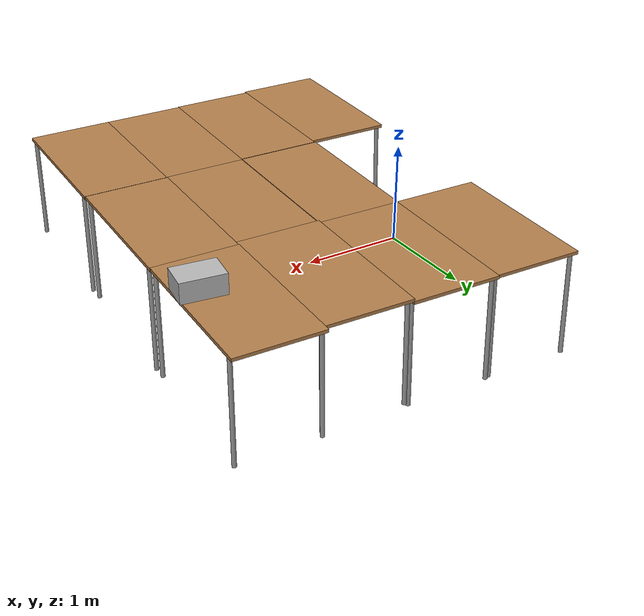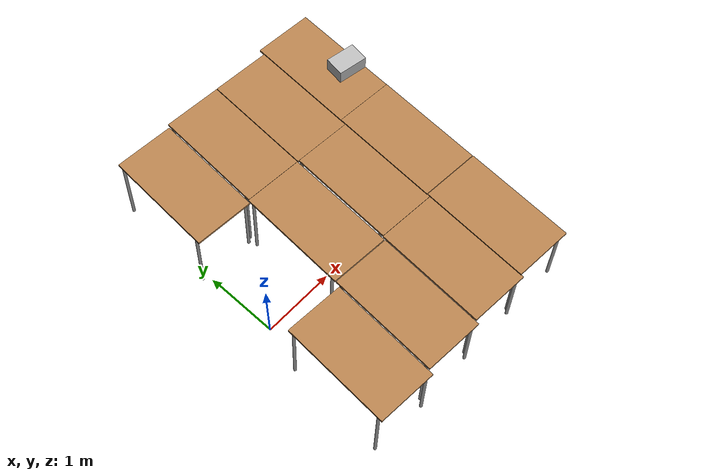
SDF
<sdf version="1.6">
 <world name="default">
  <light name="sun" type="directional">
   <pose>0 0 10 0 -0 0</pose>
   <diffuse>0.8 0.8 0.8 1</diffuse>
   <specular>0.2 0.2 0.2 1</specular>
   <attenuation>
    <range>1000</range>
    <constant>0.9</constant>
    <linear>0.01</linear>
    <quadratic>0.001</quadratic>
   </attenuation>
   <direction>-0.5 0.1 -0.9</direction>
  </light>
  <gravity>0 0 -9.8</gravity>
  <magnetic_field>6e-06 2.3e-05 -4.2e-05</magnetic_field>
  <atmosphere type="adiabatic"/>
  <physics name="default_physics" default="0" type="ode">
   <max_step_size>0.001</max_step_size>
   <real_time_factor>1</real_time_factor>
   <real_time_update_rate>1000</real_time_update_rate>
  </physics>
  <scene><ambient>0.4 0.4 0.4 1</ambient><background>0.7 0.7 0.7 1</background><shadows>1</shadows></scene>
  <spherical_coordinates>
   <surface_model>EARTH_WGS84</surface_model>
   <latitude_deg>0</latitude_deg>
   <longitude_deg>0</longitude_deg>
   <elevation>0</elevation>
   <heading_deg>0</heading_deg>
  </spherical_coordinates>
  <light name="user_directional_light_0" type="directional">
   <pose>-14.77 -34.6041 1 0 -0 0</pose>
   <diffuse>0.5 0.5 0.5 1</diffuse>
   <specular>0.1 0.1 0.1 1</specular>
   <direction>0.1 0.1 -0.9</direction>
   <attenuation>
    <range>20</range>
    <constant>0.5</constant>
    <linear>0.01</linear>
    <quadratic>0.001</quadratic>
   </attenuation>
  </light>
  <light name="user_directional_light_1" type="directional">
   <pose>-1.55221 -11.969 1 0 -0 0</pose>
   <diffuse>0.5 0.5 0.5 1</diffuse>
   <specular>0.1 0.1 0.1 1</specular>
   <direction>0.1 0.1 -0.9</direction>
   <attenuation>
    <range>20</range>
    <constant>0.5</constant>
    <linear>0.01</linear>
    <quadratic>0.001</quadratic>
   </attenuation>
  </light>
  <light name="user_directional_light_2" type="directional">
   <pose>-7.40704 12.5041 1 0 -0 0</pose>
   <diffuse>0.5 0.5 0.5 1</diffuse>
   <specular>0.1 0.1 0.1 1</specular>
   <direction>0.1 0.1 -0.9</direction>
   <attenuation>
    <range>20</range>
    <constant>0.5</constant>
    <linear>0.01</linear>
    <quadratic>0.001</quadratic>
   </attenuation>
  </light>
  <model name="table">
   <static>1</static>
   <link name="link">
    <collision name="surface">
     <pose>0 0 1 0 -0 0</pose>
     <geometry><box><size>1.5 0.8 0.03</size></box></geometry>
     <surface><friction><ode><mu>0.6</mu><mu2>0.6</mu2></ode></friction></surface>
    </collision>
    <visual name="visual1">
     <pose>0 0 1 0 -0 0</pose>
     <geometry><box><size>1.5 0.8 0.03</size></box></geometry>
     <material>
      <script><uri>file://media/materials/scripts/gazebo.material</uri><name>Gazebo/Wood</name></script>
     </material>
    </visual>
    <collision name="front_left_leg">
     <pose>0.68 0.38 0.5 0 -0 0</pose>
     <geometry><cylinder><radius>0.02</radius><length>1</length></cylinder></geometry>
    </collision>
    <visual name="front_left_leg">
     <pose>0.68 0.38 0.5 0 -0 0</pose>
     <geometry><cylinder><radius>0.02</radius><length>1</length></cylinder></geometry>
     <material>
      <script><uri>file://media/materials/scripts/gazebo.material</uri><name>Gazebo/Grey</name></script>
     </material>
    </visual>
    <collision name="front_right_leg">
     <pose>0.68 -0.38 0.5 0 -0 0</pose>
     <geometry><cylinder><radius>0.02</radius><length>1</length></cylinder></geometry>
    </collision>
    <visual name="front_right_leg">
     <pose>0.68 -0.38 0.5 0 -0 0</pose>
     <geometry><cylinder><radius>0.02</radius><length>1</length></cylinder></geometry>
     <material>
      <script><uri>file://media/materials/scripts/gazebo.material</uri><name>Gazebo/Grey</name></script>
     </material>
    </visual>
    <collision name="back_right_leg">
     <pose>-0.68 -0.38 0.5 0 -0 0</pose>
     <geometry><cylinder><radius>0.02</radius><length>1</length></cylinder></geometry>
    </collision>
    <visual name="back_right_leg">
     <pose>-0.68 -0.38 0.5 0 -0 0</pose>
     <geometry><cylinder><radius>0.02</radius><length>1</length></cylinder></geometry>
     <material>
      <script><uri>file://media/materials/scripts/gazebo.material</uri><name>Gazebo/Grey</name></script>
     </material>
    </visual>
    <collision name="back_left_leg">
     <pose>-0.68 0.38 0.5 0 -0 0</pose>
     <geometry><cylinder><radius>0.02</radius><length>1</length></cylinder></geometry>
    </collision>
    <visual name="back_left_leg">
     <pose>-0.68 0.38 0.5 0 -0 0</pose>
     <geometry><cylinder><radius>0.02</radius><length>1</length></cylinder></geometry>
     <material>
      <script><uri>file://media/materials/scripts/gazebo.material</uri><name>Gazebo/Grey</name></script>
     </material>
    </visual>
   </link>
   <pose>1.07153 0.248172 -0.001538 -0.021463 -0.00123 -1.62804</pose>
  </model>
  <model name="table_clone">
   <static>1</static>
   <link name="link">
    <collision name="surface">
     <pose>0 0 1 0 -0 0</pose>
     <geometry><box><size>1.5 0.8 0.03</size></box></geometry>
     <surface><friction><ode><mu>0.6</mu><mu2>0.6</mu2></ode></friction></surface>
    </collision>
    <visual name="visual1">
     <pose>0 0 1 0 -0 0</pose>
     <geometry><box><size>1.5 0.8 0.03</size></box></geometry>
     <material>
      <script><uri>file://media/materials/scripts/gazebo.material</uri><name>Gazebo/Wood</name></script>
     </material>
    </visual>
    <collision name="front_left_leg">
     <pose>0.68 0.38 0.5 0 -0 0</pose>
     <geometry><cylinder><radius>0.02</radius><length>1</length></cylinder></geometry>
    </collision>
    <visual name="front_left_leg">
     <pose>0.68 0.38 0.5 0 -0 0</pose>
     <geometry><cylinder><radius>0.02</radius><length>1</length></cylinder></geometry>
     <material>
      <script><uri>file://media/materials/scripts/gazebo.material</uri><name>Gazebo/Grey</name></script>
     </material>
    </visual>
    <collision name="front_right_leg">
     <pose>0.68 -0.38 0.5 0 -0 0</pose>
     <geometry><cylinder><radius>0.02</radius><length>1</length></cylinder></geometry>
    </collision>
    <visual name="front_right_leg">
     <pose>0.68 -0.38 0.5 0 -0 0</pose>
     <geometry><cylinder><radius>0.02</radius><length>1</length></cylinder></geometry>
     <material>
      <script><uri>file://media/materials/scripts/gazebo.material</uri><name>Gazebo/Grey</name></script>
     </material>
    </visual>
    <collision name="back_right_leg">
     <pose>-0.68 -0.38 0.5 0 -0 0</pose>
     <geometry><cylinder><radius>0.02</radius><length>1</length></cylinder></geometry>
    </collision>
    <visual name="back_right_leg">
     <pose>-0.68 -0.38 0.5 0 -0 0</pose>
     <geometry><cylinder><radius>0.02</radius><length>1</length></cylinder></geometry>
     <material>
      <script><uri>file://media/materials/scripts/gazebo.material</uri><name>Gazebo/Grey</name></script>
     </material>
    </visual>
    <collision name="back_left_leg">
     <pose>-0.68 0.38 0.5 0 -0 0</pose>
     <geometry><cylinder><radius>0.02</radius><length>1</length></cylinder></geometry>
    </collision>
    <visual name="back_left_leg">
     <pose>-0.68 0.38 0.5 0 -0 0</pose>
     <geometry><cylinder><radius>0.02</radius><length>1</length></cylinder></geometry>
     <material>
      <script><uri>file://media/materials/scripts/gazebo.material</uri><name>Gazebo/Grey</name></script>
     </material>
    </visual>
   </link>
   <pose>0.990012 -1.26149 -0.001538 -0.021463 -0.00123 -1.62804</pose>
  </model>
  <model name="table_clone_0">
   <static>1</static>
   <link name="link">
    <collision name="surface">
     <pose>0 0 1 0 -0 0</pose>
     <geometry><box><size>1.5 0.8 0.03</size></box></geometry>
     <surface><friction><ode><mu>0.6</mu><mu2>0.6</mu2></ode></friction></surface>
    </collision>
    <visual name="visual1">
     <pose>0 0 1 0 -0 0</pose>
     <geometry><box><size>1.5 0.8 0.03</size></box></geometry>
     <material>
      <script><uri>file://media/materials/scripts/gazebo.material</uri><name>Gazebo/Wood</name></script>
     </material>
    </visual>
    <collision name="front_left_leg">
     <pose>0.68 0.38 0.5 0 -0 0</pose>
     <geometry><cylinder><radius>0.02</radius><length>1</length></cylinder></geometry>
    </collision>
    <visual name="front_left_leg">
     <pose>0.68 0.38 0.5 0 -0 0</pose>
     <geometry><cylinder><radius>0.02</radius><length>1</length></cylinder></geometry>
     <material>
      <script><uri>file://media/materials/scripts/gazebo.material</uri><name>Gazebo/Grey</name></script>
     </material>
    </visual>
    <collision name="front_right_leg">
     <pose>0.68 -0.38 0.5 0 -0 0</pose>
     <geometry><cylinder><radius>0.02</radius><length>1</length></cylinder></geometry>
    </collision>
    <visual name="front_right_leg">
     <pose>0.68 -0.38 0.5 0 -0 0</pose>
     <geometry><cylinder><radius>0.02</radius><length>1</length></cylinder></geometry>
     <material>
      <script><uri>file://media/materials/scripts/gazebo.material</uri><name>Gazebo/Grey</name></script>
     </material>
    </visual>
    <collision name="back_right_leg">
     <pose>-0.68 -0.38 0.5 0 -0 0</pose>
     <geometry><cylinder><radius>0.02</radius><length>1</length></cylinder></geometry>
    </collision>
    <visual name="back_right_leg">
     <pose>-0.68 -0.38 0.5 0 -0 0</pose>
     <geometry><cylinder><radius>0.02</radius><length>1</length></cylinder></geometry>
     <material>
      <script><uri>file://media/materials/scripts/gazebo.material</uri><name>Gazebo/Grey</name></script>
     </material>
    </visual>
    <collision name="back_left_leg">
     <pose>-0.68 0.38 0.5 0 -0 0</pose>
     <geometry><cylinder><radius>0.02</radius><length>1</length></cylinder></geometry>
    </collision>
    <visual name="back_left_leg">
     <pose>-0.68 0.38 0.5 0 -0 0</pose>
     <geometry><cylinder><radius>0.02</radius><length>1</length></cylinder></geometry>
     <material>
      <script><uri>file://media/materials/scripts/gazebo.material</uri><name>Gazebo/Grey</name></script>
     </material>
    </visual>
   </link>
   <pose>1.16682 1.74623 -0.001538 -0.021463 -0.00123 -1.62804</pose>
  </model>
  <model name="table_clone_1">
   <static>1</static>
   <link name="link">
    <collision name="surface">
     <pose>0 0 1 0 -0 0</pose>
     <geometry><box><size>1.5 0.8 0.03</size></box></geometry>
     <surface><friction><ode><mu>0.6</mu><mu2>0.6</mu2></ode></friction></surface>
    </collision>
    <visual name="visual1">
     <pose>0 0 1 0 -0 0</pose>
     <geometry><box><size>1.5 0.8 0.03</size></box></geometry>
     <material>
      <script><uri>file://media/materials/scripts/gazebo.material</uri><name>Gazebo/Wood</name></script>
     </material>
    </visual>
    <collision name="front_left_leg">
     <pose>0.68 0.38 0.5 0 -0 0</pose>
     <geometry><cylinder><radius>0.02</radius><length>1</length></cylinder></geometry>
    </collision>
    <visual name="front_left_leg">
     <pose>0.68 0.38 0.5 0 -0 0</pose>
     <geometry><cylinder><radius>0.02</radius><length>1</length></cylinder></geometry>
     <material>
      <script><uri>file://media/materials/scripts/gazebo.material</uri><name>Gazebo/Grey</name></script>
     </material>
    </visual>
    <collision name="front_right_leg">
     <pose>0.68 -0.38 0.5 0 -0 0</pose>
     <geometry><cylinder><radius>0.02</radius><length>1</length></cylinder></geometry>
    </collision>
    <visual name="front_right_leg">
     <pose>0.68 -0.38 0.5 0 -0 0</pose>
     <geometry><cylinder><radius>0.02</radius><length>1</length></cylinder></geometry>
     <material>
      <script><uri>file://media/materials/scripts/gazebo.material</uri><name>Gazebo/Grey</name></script>
     </material>
    </visual>
    <collision name="back_right_leg">
     <pose>-0.68 -0.38 0.5 0 -0 0</pose>
     <geometry><cylinder><radius>0.02</radius><length>1</length></cylinder></geometry>
    </collision>
    <visual name="back_right_leg">
     <pose>-0.68 -0.38 0.5 0 -0 0</pose>
     <geometry><cylinder><radius>0.02</radius><length>1</length></cylinder></geometry>
     <material>
      <script><uri>file://media/materials/scripts/gazebo.material</uri><name>Gazebo/Grey</name></script>
     </material>
    </visual>
    <collision name="back_left_leg">
     <pose>-0.68 0.38 0.5 0 -0 0</pose>
     <geometry><cylinder><radius>0.02</radius><length>1</length></cylinder></geometry>
    </collision>
    <visual name="back_left_leg">
     <pose>-0.68 0.38 0.5 0 -0 0</pose>
     <geometry><cylinder><radius>0.02</radius><length>1</length></cylinder></geometry>
     <material>
      <script><uri>file://media/materials/scripts/gazebo.material</uri><name>Gazebo/Grey</name></script>
     </material>
    </visual>
   </link>
   <pose>0.349059 1.7575 -0.001538 -0.021463 -0.00123 -1.62804</pose>
  </model>
  <model name="table_clone_2">
   <static>1</static>
   <link name="link">
    <collision name="surface">
     <pose>0 0 1 0 -0 0</pose>
     <geometry><box><size>1.5 0.8 0.03</size></box></geometry>
     <surface><friction><ode><mu>0.6</mu><mu2>0.6</mu2></ode></friction></surface>
    </collision>
    <visual name="visual1">
     <pose>0 0 1 0 -0 0</pose>
     <geometry><box><size>1.5 0.8 0.03</size></box></geometry>
     <material>
      <script><uri>file://media/materials/scripts/gazebo.material</uri><name>Gazebo/Wood</name></script>
     </material>
    </visual>
    <collision name="front_left_leg">
     <pose>0.68 0.38 0.5 0 -0 0</pose>
     <geometry><cylinder><radius>0.02</radius><length>1</length></cylinder></geometry>
    </collision>
    <visual name="front_left_leg">
     <pose>0.68 0.38 0.5 0 -0 0</pose>
     <geometry><cylinder><radius>0.02</radius><length>1</length></cylinder></geometry>
     <material>
      <script><uri>file://media/materials/scripts/gazebo.material</uri><name>Gazebo/Grey</name></script>
     </material>
    </visual>
    <collision name="front_right_leg">
     <pose>0.68 -0.38 0.5 0 -0 0</pose>
     <geometry><cylinder><radius>0.02</radius><length>1</length></cylinder></geometry>
    </collision>
    <visual name="front_right_leg">
     <pose>0.68 -0.38 0.5 0 -0 0</pose>
     <geometry><cylinder><radius>0.02</radius><length>1</length></cylinder></geometry>
     <material>
      <script><uri>file://media/materials/scripts/gazebo.material</uri><name>Gazebo/Grey</name></script>
     </material>
    </visual>
    <collision name="back_right_leg">
     <pose>-0.68 -0.38 0.5 0 -0 0</pose>
     <geometry><cylinder><radius>0.02</radius><length>1</length></cylinder></geometry>
    </collision>
    <visual name="back_right_leg">
     <pose>-0.68 -0.38 0.5 0 -0 0</pose>
     <geometry><cylinder><radius>0.02</radius><length>1</length></cylinder></geometry>
     <material>
      <script><uri>file://media/materials/scripts/gazebo.material</uri><name>Gazebo/Grey</name></script>
     </material>
    </visual>
    <collision name="back_left_leg">
     <pose>-0.68 0.38 0.5 0 -0 0</pose>
     <geometry><cylinder><radius>0.02</radius><length>1</length></cylinder></geometry>
    </collision>
    <visual name="back_left_leg">
     <pose>-0.68 0.38 0.5 0 -0 0</pose>
     <geometry><cylinder><radius>0.02</radius><length>1</length></cylinder></geometry>
     <material>
      <script><uri>file://media/materials/scripts/gazebo.material</uri><name>Gazebo/Grey</name></script>
     </material>
    </visual>
   </link>
   <pose>0.172695 -1.28199 -0.001538 -0.021463 -0.00123 -1.62804</pose>
  </model>
  <model name="table_clone_3">
   <static>1</static>
   <link name="link">
    <collision name="surface">
     <pose>0 0 1 0 -0 0</pose>
     <geometry><box><size>1.5 0.8 0.03</size></box></geometry>
     <surface><friction><ode><mu>0.6</mu><mu2>0.6</mu2></ode></friction></surface>
    </collision>
    <visual name="visual1">
     <pose>0 0 1 0 -0 0</pose>
     <geometry><box><size>1.5 0.8 0.03</size></box></geometry>
     <material>
      <script><uri>file://media/materials/scripts/gazebo.material</uri><name>Gazebo/Wood</name></script>
     </material>
    </visual>
    <collision name="front_left_leg">
     <pose>0.68 0.38 0.5 0 -0 0</pose>
     <geometry><cylinder><radius>0.02</radius><length>1</length></cylinder></geometry>
    </collision>
    <visual name="front_left_leg">
     <pose>0.68 0.38 0.5 0 -0 0</pose>
     <geometry><cylinder><radius>0.02</radius><length>1</length></cylinder></geometry>
     <material>
      <script><uri>file://media/materials/scripts/gazebo.material</uri><name>Gazebo/Grey</name></script>
     </material>
    </visual>
    <collision name="front_right_leg">
     <pose>0.68 -0.38 0.5 0 -0 0</pose>
     <geometry><cylinder><radius>0.02</radius><length>1</length></cylinder></geometry>
    </collision>
    <visual name="front_right_leg">
     <pose>0.68 -0.38 0.5 0 -0 0</pose>
     <geometry><cylinder><radius>0.02</radius><length>1</length></cylinder></geometry>
     <material>
      <script><uri>file://media/materials/scripts/gazebo.material</uri><name>Gazebo/Grey</name></script>
     </material>
    </visual>
    <collision name="back_right_leg">
     <pose>-0.68 -0.38 0.5 0 -0 0</pose>
     <geometry><cylinder><radius>0.02</radius><length>1</length></cylinder></geometry>
    </collision>
    <visual name="back_right_leg">
     <pose>-0.68 -0.38 0.5 0 -0 0</pose>
     <geometry><cylinder><radius>0.02</radius><length>1</length></cylinder></geometry>
     <material>
      <script><uri>file://media/materials/scripts/gazebo.material</uri><name>Gazebo/Grey</name></script>
     </material>
    </visual>
    <collision name="back_left_leg">
     <pose>-0.68 0.38 0.5 0 -0 0</pose>
     <geometry><cylinder><radius>0.02</radius><length>1</length></cylinder></geometry>
    </collision>
    <visual name="back_left_leg">
     <pose>-0.68 0.38 0.5 0 -0 0</pose>
     <geometry><cylinder><radius>0.02</radius><length>1</length></cylinder></geometry>
     <material>
      <script><uri>file://media/materials/scripts/gazebo.material</uri><name>Gazebo/Grey</name></script>
     </material>
    </visual>
   </link>
   <pose>1.8008 -1.25855 -0.001538 -0.021463 -0.00123 -1.62804</pose>
  </model>
  <model name="table_clone_4">
   <static>1</static>
   <link name="link">
    <collision name="surface">
     <pose>0 0 1 0 -0 0</pose>
     <geometry><box><size>1.5 0.8 0.03</size></box></geometry>
     <surface><friction><ode><mu>0.6</mu><mu2>0.6</mu2></ode></friction></surface>
    </collision>
    <visual name="visual1">
     <pose>0 0 1 0 -0 0</pose>
     <geometry><box><size>1.5 0.8 0.03</size></box></geometry>
     <material>
      <script><uri>file://media/materials/scripts/gazebo.material</uri><name>Gazebo/Wood</name></script>
     </material>
    </visual>
    <collision name="front_left_leg">
     <pose>0.68 0.38 0.5 0 -0 0</pose>
     <geometry><cylinder><radius>0.02</radius><length>1</length></cylinder></geometry>
    </collision>
    <visual name="front_left_leg">
     <pose>0.68 0.38 0.5 0 -0 0</pose>
     <geometry><cylinder><radius>0.02</radius><length>1</length></cylinder></geometry>
     <material>
      <script><uri>file://media/materials/scripts/gazebo.material</uri><name>Gazebo/Grey</name></script>
     </material>
    </visual>
    <collision name="front_right_leg">
     <pose>0.68 -0.38 0.5 0 -0 0</pose>
     <geometry><cylinder><radius>0.02</radius><length>1</length></cylinder></geometry>
    </collision>
    <visual name="front_right_leg">
     <pose>0.68 -0.38 0.5 0 -0 0</pose>
     <geometry><cylinder><radius>0.02</radius><length>1</length></cylinder></geometry>
     <material>
      <script><uri>file://media/materials/scripts/gazebo.material</uri><name>Gazebo/Grey</name></script>
     </material>
    </visual>
    <collision name="back_right_leg">
     <pose>-0.68 -0.38 0.5 0 -0 0</pose>
     <geometry><cylinder><radius>0.02</radius><length>1</length></cylinder></geometry>
    </collision>
    <visual name="back_right_leg">
     <pose>-0.68 -0.38 0.5 0 -0 0</pose>
     <geometry><cylinder><radius>0.02</radius><length>1</length></cylinder></geometry>
     <material>
      <script><uri>file://media/materials/scripts/gazebo.material</uri><name>Gazebo/Grey</name></script>
     </material>
    </visual>
    <collision name="back_left_leg">
     <pose>-0.68 0.38 0.5 0 -0 0</pose>
     <geometry><cylinder><radius>0.02</radius><length>1</length></cylinder></geometry>
    </collision>
    <visual name="back_left_leg">
     <pose>-0.68 0.38 0.5 0 -0 0</pose>
     <geometry><cylinder><radius>0.02</radius><length>1</length></cylinder></geometry>
     <material>
      <script><uri>file://media/materials/scripts/gazebo.material</uri><name>Gazebo/Grey</name></script>
     </material>
    </visual>
   </link>
   <pose>1.89393 0.240593 -0.001538 -0.021463 -0.00123 -1.62804</pose>
  </model>
  <model name="table_clone_5">
   <static>1</static>
   <link name="link">
    <collision name="surface">
     <pose>0 0 1 0 -0 0</pose>
     <geometry><box><size>1.5 0.8 0.03</size></box></geometry>
     <surface><friction><ode><mu>0.6</mu><mu2>0.6</mu2></ode></friction></surface>
    </collision>
    <visual name="visual1">
     <pose>0 0 1 0 -0 0</pose>
     <geometry><box><size>1.5 0.8 0.03</size></box></geometry>
     <material>
      <script><uri>file://media/materials/scripts/gazebo.material</uri><name>Gazebo/Wood</name></script>
     </material>
    </visual>
    <collision name="front_left_leg">
     <pose>0.68 0.38 0.5 0 -0 0</pose>
     <geometry><cylinder><radius>0.02</radius><length>1</length></cylinder></geometry>
    </collision>
    <visual name="front_left_leg">
     <pose>0.68 0.38 0.5 0 -0 0</pose>
     <geometry><cylinder><radius>0.02</radius><length>1</length></cylinder></geometry>
     <material>
      <script><uri>file://media/materials/scripts/gazebo.material</uri><name>Gazebo/Grey</name></script>
     </material>
    </visual>
    <collision name="front_right_leg">
     <pose>0.68 -0.38 0.5 0 -0 0</pose>
     <geometry><cylinder><radius>0.02</radius><length>1</length></cylinder></geometry>
    </collision>
    <visual name="front_right_leg">
     <pose>0.68 -0.38 0.5 0 -0 0</pose>
     <geometry><cylinder><radius>0.02</radius><length>1</length></cylinder></geometry>
     <material>
      <script><uri>file://media/materials/scripts/gazebo.material</uri><name>Gazebo/Grey</name></script>
     </material>
    </visual>
    <collision name="back_right_leg">
     <pose>-0.68 -0.38 0.5 0 -0 0</pose>
     <geometry><cylinder><radius>0.02</radius><length>1</length></cylinder></geometry>
    </collision>
    <visual name="back_right_leg">
     <pose>-0.68 -0.38 0.5 0 -0 0</pose>
     <geometry><cylinder><radius>0.02</radius><length>1</length></cylinder></geometry>
     <material>
      <script><uri>file://media/materials/scripts/gazebo.material</uri><name>Gazebo/Grey</name></script>
     </material>
    </visual>
    <collision name="back_left_leg">
     <pose>-0.68 0.38 0.5 0 -0 0</pose>
     <geometry><cylinder><radius>0.02</radius><length>1</length></cylinder></geometry>
    </collision>
    <visual name="back_left_leg">
     <pose>-0.68 0.38 0.5 0 -0 0</pose>
     <geometry><cylinder><radius>0.02</radius><length>1</length></cylinder></geometry>
     <material>
      <script><uri>file://media/materials/scripts/gazebo.material</uri><name>Gazebo/Grey</name></script>
     </material>
    </visual>
   </link>
   <pose>1.95641 1.69256 -0.001538 -0.021463 -0.00123 -1.62804</pose>
  </model>
  <model name="table_clone_6">
   <static>1</static>
   <link name="link">
    <collision name="surface">
     <pose>0 0 1 0 -0 0</pose>
     <geometry><box><size>1.5 0.8 0.03</size></box></geometry>
     <surface><friction><ode><mu>0.6</mu><mu2>0.6</mu2></ode></friction></surface>
    </collision>
    <visual name="visual1">
     <pose>0 0 1 0 -0 0</pose>
     <geometry><box><size>1.5 0.8 0.03</size></box></geometry>
     <material>
      <script><uri>file://media/materials/scripts/gazebo.material</uri><name>Gazebo/Wood</name></script>
     </material>
    </visual>
    <collision name="front_left_leg">
     <pose>0.68 0.38 0.5 0 -0 0</pose>
     <geometry><cylinder><radius>0.02</radius><length>1</length></cylinder></geometry>
    </collision>
    <visual name="front_left_leg">
     <pose>0.68 0.38 0.5 0 -0 0</pose>
     <geometry><cylinder><radius>0.02</radius><length>1</length></cylinder></geometry>
     <material>
      <script><uri>file://media/materials/scripts/gazebo.material</uri><name>Gazebo/Grey</name></script>
     </material>
    </visual>
    <collision name="front_right_leg">
     <pose>0.68 -0.38 0.5 0 -0 0</pose>
     <geometry><cylinder><radius>0.02</radius><length>1</length></cylinder></geometry>
    </collision>
    <visual name="front_right_leg">
     <pose>0.68 -0.38 0.5 0 -0 0</pose>
     <geometry><cylinder><radius>0.02</radius><length>1</length></cylinder></geometry>
     <material>
      <script><uri>file://media/materials/scripts/gazebo.material</uri><name>Gazebo/Grey</name></script>
     </material>
    </visual>
    <collision name="back_right_leg">
     <pose>-0.68 -0.38 0.5 0 -0 0</pose>
     <geometry><cylinder><radius>0.02</radius><length>1</length></cylinder></geometry>
    </collision>
    <visual name="back_right_leg">
     <pose>-0.68 -0.38 0.5 0 -0 0</pose>
     <geometry><cylinder><radius>0.02</radius><length>1</length></cylinder></geometry>
     <material>
      <script><uri>file://media/materials/scripts/gazebo.material</uri><name>Gazebo/Grey</name></script>
     </material>
    </visual>
    <collision name="back_left_leg">
     <pose>-0.68 0.38 0.5 0 -0 0</pose>
     <geometry><cylinder><radius>0.02</radius><length>1</length></cylinder></geometry>
    </collision>
    <visual name="back_left_leg">
     <pose>-0.68 0.38 0.5 0 -0 0</pose>
     <geometry><cylinder><radius>0.02</radius><length>1</length></cylinder></geometry>
     <material>
      <script><uri>file://media/materials/scripts/gazebo.material</uri><name>Gazebo/Grey</name></script>
     </material>
    </visual>
   </link>
   <pose>2.59635 -1.26672 -0.001538 -0.021463 -0.00123 -1.62804</pose>
  </model>
  <model name="table_clone_7">
   <static>1</static>
   <link name="link">
    <collision name="surface">
     <pose>0 0 1 0 -0 0</pose>
     <geometry><box><size>1.5 0.8 0.03</size></box></geometry>
     <surface><friction><ode><mu>0.6</mu><mu2>0.6</mu2></ode></friction></surface>
    </collision>
    <visual name="visual1">
     <pose>0 0 1 0 -0 0</pose>
     <geometry><box><size>1.5 0.8 0.03</size></box></geometry>
     <material>
      <script><uri>file://media/materials/scripts/gazebo.material</uri><name>Gazebo/Wood</name></script>
     </material>
    </visual>
    <collision name="front_left_leg">
     <pose>0.68 0.38 0.5 0 -0 0</pose>
     <geometry><cylinder><radius>0.02</radius><length>1</length></cylinder></geometry>
    </collision>
    <visual name="front_left_leg">
     <pose>0.68 0.38 0.5 0 -0 0</pose>
     <geometry><cylinder><radius>0.02</radius><length>1</length></cylinder></geometry>
     <material>
      <script><uri>file://media/materials/scripts/gazebo.material</uri><name>Gazebo/Grey</name></script>
     </material>
    </visual>
    <collision name="front_right_leg">
     <pose>0.68 -0.38 0.5 0 -0 0</pose>
     <geometry><cylinder><radius>0.02</radius><length>1</length></cylinder></geometry>
    </collision>
    <visual name="front_right_leg">
     <pose>0.68 -0.38 0.5 0 -0 0</pose>
     <geometry><cylinder><radius>0.02</radius><length>1</length></cylinder></geometry>
     <material>
      <script><uri>file://media/materials/scripts/gazebo.material</uri><name>Gazebo/Grey</name></script>
     </material>
    </visual>
    <collision name="back_right_leg">
     <pose>-0.68 -0.38 0.5 0 -0 0</pose>
     <geometry><cylinder><radius>0.02</radius><length>1</length></cylinder></geometry>
    </collision>
    <visual name="back_right_leg">
     <pose>-0.68 -0.38 0.5 0 -0 0</pose>
     <geometry><cylinder><radius>0.02</radius><length>1</length></cylinder></geometry>
     <material>
      <script><uri>file://media/materials/scripts/gazebo.material</uri><name>Gazebo/Grey</name></script>
     </material>
    </visual>
    <collision name="back_left_leg">
     <pose>-0.68 0.38 0.5 0 -0 0</pose>
     <geometry><cylinder><radius>0.02</radius><length>1</length></cylinder></geometry>
    </collision>
    <visual name="back_left_leg">
     <pose>-0.68 0.38 0.5 0 -0 0</pose>
     <geometry><cylinder><radius>0.02</radius><length>1</length></cylinder></geometry>
     <material>
      <script><uri>file://media/materials/scripts/gazebo.material</uri><name>Gazebo/Grey</name></script>
     </material>
    </visual>
   </link>
   <pose>2.67704 0.23879 -0.001538 -0.021463 -0.00123 -1.62804</pose>
  </model>
  <model name="table_clone_8">
   <static>1</static>
   <link name="link">
    <collision name="surface">
     <pose>0 0 1 0 -0 0</pose>
     <geometry><box><size>1.5 0.8 0.03</size></box></geometry>
     <surface><friction><ode><mu>0.6</mu><mu2>0.6</mu2></ode></friction></surface>
    </collision>
    <visual name="visual1">
     <pose>0 0 1 0 -0 0</pose>
     <geometry><box><size>1.5 0.8 0.03</size></box></geometry>
     <material>
      <script><uri>file://media/materials/scripts/gazebo.material</uri><name>Gazebo/Wood</name></script>
     </material>
    </visual>
    <collision name="front_left_leg">
     <pose>0.68 0.38 0.5 0 -0 0</pose>
     <geometry><cylinder><radius>0.02</radius><length>1</length></cylinder></geometry>
    </collision>
    <visual name="front_left_leg">
     <pose>0.68 0.38 0.5 0 -0 0</pose>
     <geometry><cylinder><radius>0.02</radius><length>1</length></cylinder></geometry>
     <material>
      <script><uri>file://media/materials/scripts/gazebo.material</uri><name>Gazebo/Grey</name></script>
     </material>
    </visual>
    <collision name="front_right_leg">
     <pose>0.68 -0.38 0.5 0 -0 0</pose>
     <geometry><cylinder><radius>0.02</radius><length>1</length></cylinder></geometry>
    </collision>
    <visual name="front_right_leg">
     <pose>0.68 -0.38 0.5 0 -0 0</pose>
     <geometry><cylinder><radius>0.02</radius><length>1</length></cylinder></geometry>
     <material>
      <script><uri>file://media/materials/scripts/gazebo.material</uri><name>Gazebo/Grey</name></script>
     </material>
    </visual>
    <collision name="back_right_leg">
     <pose>-0.68 -0.38 0.5 0 -0 0</pose>
     <geometry><cylinder><radius>0.02</radius><length>1</length></cylinder></geometry>
    </collision>
    <visual name="back_right_leg">
     <pose>-0.68 -0.38 0.5 0 -0 0</pose>
     <geometry><cylinder><radius>0.02</radius><length>1</length></cylinder></geometry>
     <material>
      <script><uri>file://media/materials/scripts/gazebo.material</uri><name>Gazebo/Grey</name></script>
     </material>
    </visual>
    <collision name="back_left_leg">
     <pose>-0.68 0.38 0.5 0 -0 0</pose>
     <geometry><cylinder><radius>0.02</radius><length>1</length></cylinder></geometry>
    </collision>
    <visual name="back_left_leg">
     <pose>-0.68 0.38 0.5 0 -0 0</pose>
     <geometry><cylinder><radius>0.02</radius><length>1</length></cylinder></geometry>
     <material>
      <script><uri>file://media/materials/scripts/gazebo.material</uri><name>Gazebo/Grey</name></script>
     </material>
    </visual>
   </link>
   <pose>2.75856 1.72218 -0.001538 -0.021463 -0.00123 -1.62804</pose>
  </model>
  <model name="pushbox">
   <pose>2.97886 1.4962 1.10333 -0.003345 0.021237 -0.156204</pose>
   <link name="link">
    <collision name="collision">
     <geometry><box><size>0.402234 0.271724 0.188693</size></box></geometry>
    </collision>
    <visual name="visual"><geometry><box><size>0.402234 0.271724 0.188693</size></box></geometry></visual>
    <inertial>
     <inertia><ixx>1</ixx><ixy>0</ixy><ixz>0</ixz><iyy>1</iyy><iyz>0</iyz><izz>1</izz></inertia>
     <mass>1</mass>
    </inertial>
   </link>
  </model>
 </world>
</sdf>
